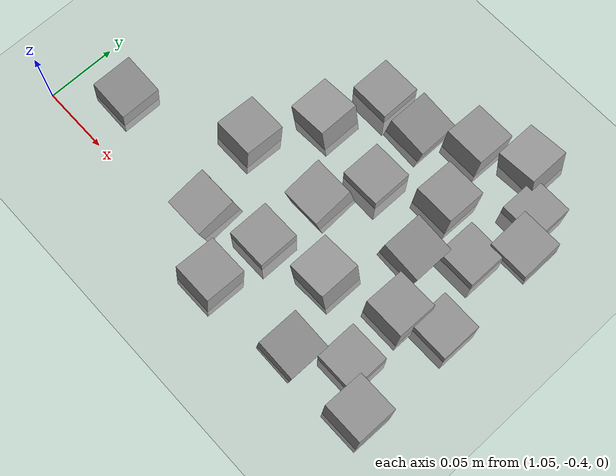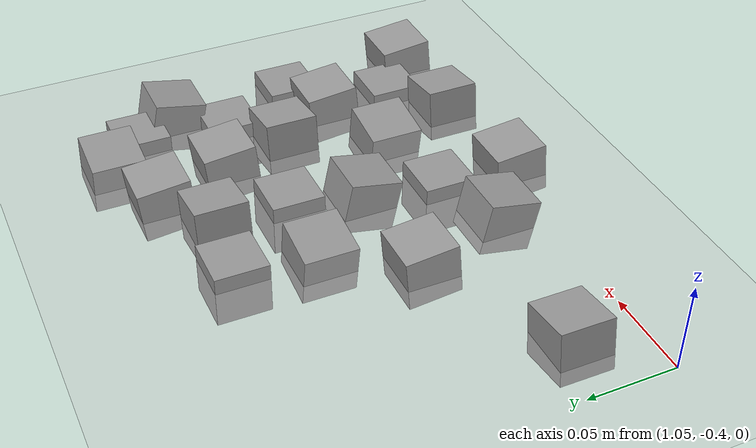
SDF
<sdf version="1.7">
 <world name="default">
  <model name="ground_plane">
   <static>1</static>
   <link name="link">
    <collision name="collision">
     <geometry><plane><normal>0 0 1</normal><size>100 100</size></plane></geometry>
     <surface><friction><ode><mu>100</mu><mu2>50</mu2></ode></friction></surface>
    </collision>
    <visual name="visual">
     <cast_shadows>0</cast_shadows>
     <geometry><plane><normal>0 0 1</normal><size>100 100</size></plane></geometry>
     <material>
      <script><uri>file://media/materials/scripts/gazebo.material</uri><name>Gazebo/Grey</name></script>
     </material>
    </visual>
   </link>
  </model>
  <model name="stone_road_1">
   <link name="link_0">
    <inertial>
     <mass>1</mass>
     <inertia>
      <ixx>0.166667</ixx>
      <ixy>0</ixy>
      <ixz>0</ixz>
      <iyy>0.166667</iyy>
      <iyz>0</iyz>
      <izz>0.166667</izz>
     </inertia>
    </inertial>
    <pose>-0.171827 0.03973 0.003778 0.2 -0 0</pose>
    <kinematic>1</kinematic>
    <visual name="visual">
     <geometry><box><size>0.03 0.03 0.03</size></box></geometry>
     <material>
      <lighting>1</lighting>
      <script><uri>file://media/materials/scripts/gazebo.material</uri><name>Gazebo/Grey</name></script>
      <shader type="pixel"><normal_map>__default__</normal_map></shader>
      <ambient>0.3 0.3 0.3 1</ambient>
      <diffuse>0.7 0.7 0.7 1</diffuse>
      <specular>0.01 0.01 0.01 1</specular>
      <emissive>0 0 0 1</emissive>
     </material>
    </visual>
    <collision name="collision">
     <geometry><box><size>0.03 0.03 0.03</size></box></geometry>
     <surface>
      <friction>
       <ode><mu>1</mu><mu2>1</mu2><fdir1>0 0 0</fdir1><slip1>0</slip1><slip2>0</slip2></ode>
       <torsional>
        <coefficient>1</coefficient>
        <patch_radius>0</patch_radius>
        <surface_radius>0</surface_radius>
        <use_patch_radius>1</use_patch_radius>
        <ode><slip>0</slip></ode>
       </torsional>
      </friction>
      <bounce><restitution_coefficient>0</restitution_coefficient><threshold>1e+06</threshold></bounce>
      <contact>
       <collide_without_contact>0</collide_without_contact>
       <collide_without_contact_bitmask>1</collide_without_contact_bitmask>
       <collide_bitmask>1</collide_bitmask>
       <ode>
        <soft_cfm>0</soft_cfm>
        <soft_erp>0.2</soft_erp>
        <kp>1e+13</kp>
        <kd>1</kd>
        <max_vel>0.01</max_vel>
        <min_depth>0</min_depth>
       </ode>
       <bullet>
        <split_impulse>1</split_impulse>
        <split_impulse_penetration_threshold>-0.01</split_impulse_penetration_threshold>
        <soft_cfm>0</soft_cfm>
        <soft_erp>0.2</soft_erp>
        <kp>1e+13</kp>
        <kd>1</kd>
       </bullet>
      </contact>
     </surface>
    </collision>
   </link>
   <link name="link_0_clone_10">
    <inertial>
     <mass>1</mass>
     <inertia>
      <ixx>0.166667</ixx>
      <ixy>0</ixy>
      <ixz>0</ixz>
      <iyy>0.166667</iyy>
      <iyz>0</iyz>
      <izz>0.166667</izz>
     </inertia>
    </inertial>
    <pose>-0.01295 0.17123 0.003778 0.2 -0 0</pose>
    <kinematic>1</kinematic>
    <visual name="visual">
     <geometry><box><size>0.03 0.03 0.03</size></box></geometry>
     <material>
      <lighting>1</lighting>
      <script><uri>file://media/materials/scripts/gazebo.material</uri><name>Gazebo/Grey</name></script>
      <shader type="pixel"><normal_map>__default__</normal_map></shader>
      <ambient>0.3 0.3 0.3 1</ambient>
      <diffuse>0.7 0.7 0.7 1</diffuse>
      <specular>0.01 0.01 0.01 1</specular>
      <emissive>0 0 0 1</emissive>
     </material>
    </visual>
    <collision name="collision">
     <geometry><box><size>0.03 0.03 0.03</size></box></geometry>
     <surface>
      <friction>
       <ode><mu>1</mu><mu2>1</mu2><fdir1>0 0 0</fdir1><slip1>0</slip1><slip2>0</slip2></ode>
       <torsional>
        <coefficient>1</coefficient>
        <patch_radius>0</patch_radius>
        <surface_radius>0</surface_radius>
        <use_patch_radius>1</use_patch_radius>
        <ode><slip>0</slip></ode>
       </torsional>
      </friction>
      <bounce><restitution_coefficient>0</restitution_coefficient><threshold>1e+06</threshold></bounce>
      <contact>
       <collide_without_contact>0</collide_without_contact>
       <collide_without_contact_bitmask>1</collide_without_contact_bitmask>
       <collide_bitmask>1</collide_bitmask>
       <ode>
        <soft_cfm>0</soft_cfm>
        <soft_erp>0.2</soft_erp>
        <kp>1e+13</kp>
        <kd>1</kd>
        <max_vel>0.01</max_vel>
        <min_depth>0</min_depth>
       </ode>
       <bullet>
        <split_impulse>1</split_impulse>
        <split_impulse_penetration_threshold>-0.01</split_impulse_penetration_threshold>
        <soft_cfm>0</soft_cfm>
        <soft_erp>0.2</soft_erp>
        <kp>1e+13</kp>
        <kd>1</kd>
       </bullet>
      </contact>
     </surface>
    </collision>
   </link>
   <link name="link_0_clone_2">
    <inertial>
     <mass>1</mass>
     <inertia>
      <ixx>0.166667</ixx>
      <ixy>0</ixy>
      <ixz>0</ixz>
      <iyy>0.166667</iyy>
      <iyz>0</iyz>
      <izz>0.166667</izz>
     </inertia>
    </inertial>
    <pose>-0.065685 0.018139 0.003778 0 0.15 0</pose>
    <kinematic>1</kinematic>
    <visual name="visual">
     <geometry><box><size>0.03 0.03 0.03</size></box></geometry>
     <material>
      <lighting>1</lighting>
      <script><uri>file://media/materials/scripts/gazebo.material</uri><name>Gazebo/Grey</name></script>
      <shader type="pixel"><normal_map>__default__</normal_map></shader>
      <ambient>0.3 0.3 0.3 1</ambient>
      <diffuse>0.7 0.7 0.7 1</diffuse>
      <specular>0.01 0.01 0.01 1</specular>
      <emissive>0 0 0 1</emissive>
     </material>
    </visual>
    <collision name="collision">
     <geometry><box><size>0.03 0.03 0.03</size></box></geometry>
     <surface>
      <friction>
       <ode><mu>1</mu><mu2>1</mu2><fdir1>0 0 0</fdir1><slip1>0</slip1><slip2>0</slip2></ode>
       <torsional>
        <coefficient>1</coefficient>
        <patch_radius>0</patch_radius>
        <surface_radius>0</surface_radius>
        <use_patch_radius>1</use_patch_radius>
        <ode><slip>0</slip></ode>
       </torsional>
      </friction>
      <bounce><restitution_coefficient>0</restitution_coefficient><threshold>1e+06</threshold></bounce>
      <contact>
       <collide_without_contact>0</collide_without_contact>
       <collide_without_contact_bitmask>1</collide_without_contact_bitmask>
       <collide_bitmask>1</collide_bitmask>
       <ode>
        <soft_cfm>0</soft_cfm>
        <soft_erp>0.2</soft_erp>
        <kp>1e+13</kp>
        <kd>1</kd>
        <max_vel>0.01</max_vel>
        <min_depth>0</min_depth>
       </ode>
       <bullet>
        <split_impulse>1</split_impulse>
        <split_impulse_penetration_threshold>-0.01</split_impulse_penetration_threshold>
        <soft_cfm>0</soft_cfm>
        <soft_erp>0.2</soft_erp>
        <kp>1e+13</kp>
        <kd>1</kd>
       </bullet>
      </contact>
     </surface>
    </collision>
   </link>
   <link name="link_0_clone_2_clone_2_clone_1">
    <inertial>
     <mass>1</mass>
     <inertia>
      <ixx>0.166667</ixx>
      <ixy>0</ixy>
      <ixz>0</ixz>
      <iyy>0.166667</iyy>
      <iyz>0</iyz>
      <izz>0.166667</izz>
     </inertia>
    </inertial>
    <pose>-0.085624 0.065625 0.003778 0 -0.15 0</pose>
    <kinematic>1</kinematic>
    <visual name="visual">
     <geometry><box><size>0.03 0.03 0.03</size></box></geometry>
     <material>
      <lighting>1</lighting>
      <script><uri>file://media/materials/scripts/gazebo.material</uri><name>Gazebo/Grey</name></script>
      <shader type="pixel"><normal_map>__default__</normal_map></shader>
      <ambient>0.3 0.3 0.3 1</ambient>
      <diffuse>0.7 0.7 0.7 1</diffuse>
      <specular>0.01 0.01 0.01 1</specular>
      <emissive>0 0 0 1</emissive>
     </material>
    </visual>
    <collision name="collision">
     <geometry><box><size>0.03 0.03 0.03</size></box></geometry>
     <surface>
      <friction>
       <ode><mu>1</mu><mu2>1</mu2><fdir1>0 0 0</fdir1><slip1>0</slip1><slip2>0</slip2></ode>
       <torsional>
        <coefficient>1</coefficient>
        <patch_radius>0</patch_radius>
        <surface_radius>0</surface_radius>
        <use_patch_radius>1</use_patch_radius>
        <ode><slip>0</slip></ode>
       </torsional>
      </friction>
      <bounce><restitution_coefficient>0</restitution_coefficient><threshold>1e+06</threshold></bounce>
      <contact>
       <collide_without_contact>0</collide_without_contact>
       <collide_without_contact_bitmask>1</collide_without_contact_bitmask>
       <collide_bitmask>1</collide_bitmask>
       <ode>
        <soft_cfm>0</soft_cfm>
        <soft_erp>0.2</soft_erp>
        <kp>1e+13</kp>
        <kd>1</kd>
        <max_vel>0.01</max_vel>
        <min_depth>0</min_depth>
       </ode>
       <bullet>
        <split_impulse>1</split_impulse>
        <split_impulse_penetration_threshold>-0.01</split_impulse_penetration_threshold>
        <soft_cfm>0</soft_cfm>
        <soft_erp>0.2</soft_erp>
        <kp>1e+13</kp>
        <kd>1</kd>
       </bullet>
      </contact>
     </surface>
    </collision>
   </link>
   <link name="link_0_clone_2_clone_2_clone_11">
    <inertial>
     <mass>1</mass>
     <inertia>
      <ixx>0.166667</ixx>
      <ixy>0</ixy>
      <ixz>0</ixz>
      <iyy>0.166667</iyy>
      <iyz>0</iyz>
      <izz>0.166667</izz>
     </inertia>
    </inertial>
    <pose>-0.050382 0.216558 0.003778 0 -0.15 0</pose>
    <kinematic>1</kinematic>
    <visual name="visual">
     <geometry><box><size>0.03 0.03 0.03</size></box></geometry>
     <material>
      <lighting>1</lighting>
      <script><uri>file://media/materials/scripts/gazebo.material</uri><name>Gazebo/Grey</name></script>
      <shader type="pixel"><normal_map>__default__</normal_map></shader>
      <ambient>0.3 0.3 0.3 1</ambient>
      <diffuse>0.7 0.7 0.7 1</diffuse>
      <specular>0.01 0.01 0.01 1</specular>
      <emissive>0 0 0 1</emissive>
     </material>
    </visual>
    <collision name="collision">
     <geometry><box><size>0.03 0.03 0.03</size></box></geometry>
     <surface>
      <friction>
       <ode><mu>1</mu><mu2>1</mu2><fdir1>0 0 0</fdir1><slip1>0</slip1><slip2>0</slip2></ode>
       <torsional>
        <coefficient>1</coefficient>
        <patch_radius>0</patch_radius>
        <surface_radius>0</surface_radius>
        <use_patch_radius>1</use_patch_radius>
        <ode><slip>0</slip></ode>
       </torsional>
      </friction>
      <bounce><restitution_coefficient>0</restitution_coefficient><threshold>1e+06</threshold></bounce>
      <contact>
       <collide_without_contact>0</collide_without_contact>
       <collide_without_contact_bitmask>1</collide_without_contact_bitmask>
       <collide_bitmask>1</collide_bitmask>
       <ode>
        <soft_cfm>0</soft_cfm>
        <soft_erp>0.2</soft_erp>
        <kp>1e+13</kp>
        <kd>1</kd>
        <max_vel>0.01</max_vel>
        <min_depth>0</min_depth>
       </ode>
       <bullet>
        <split_impulse>1</split_impulse>
        <split_impulse_penetration_threshold>-0.01</split_impulse_penetration_threshold>
        <soft_cfm>0</soft_cfm>
        <soft_erp>0.2</soft_erp>
        <kp>1e+13</kp>
        <kd>1</kd>
       </bullet>
      </contact>
     </surface>
    </collision>
   </link>
   <link name="link_0_clone_2_clone_2_clone_13_clone_clone_13">
    <inertial>
     <mass>1</mass>
     <inertia>
      <ixx>0.166667</ixx>
      <ixy>0</ixy>
      <ixz>0</ixz>
      <iyy>0.166667</iyy>
      <iyz>0</iyz>
      <izz>0.166667</izz>
     </inertia>
    </inertial>
    <pose>-0.069861 0.157394 0.003778 -0.1 0 0</pose>
    <kinematic>1</kinematic>
    <visual name="visual">
     <geometry><box><size>0.03 0.03 0.03</size></box></geometry>
     <material>
      <lighting>1</lighting>
      <script><uri>file://media/materials/scripts/gazebo.material</uri><name>Gazebo/Grey</name></script>
      <shader type="pixel"><normal_map>__default__</normal_map></shader>
      <ambient>0.3 0.3 0.3 1</ambient>
      <diffuse>0.7 0.7 0.7 1</diffuse>
      <specular>0.01 0.01 0.01 1</specular>
      <emissive>0 0 0 1</emissive>
     </material>
    </visual>
    <collision name="collision">
     <geometry><box><size>0.03 0.03 0.03</size></box></geometry>
     <surface>
      <friction>
       <ode><mu>1</mu><mu2>1</mu2><fdir1>0 0 0</fdir1><slip1>0</slip1><slip2>0</slip2></ode>
       <torsional>
        <coefficient>1</coefficient>
        <patch_radius>0</patch_radius>
        <surface_radius>0</surface_radius>
        <use_patch_radius>1</use_patch_radius>
        <ode><slip>0</slip></ode>
       </torsional>
      </friction>
      <bounce><restitution_coefficient>0</restitution_coefficient><threshold>1e+06</threshold></bounce>
      <contact>
       <collide_without_contact>0</collide_without_contact>
       <collide_without_contact_bitmask>1</collide_without_contact_bitmask>
       <collide_bitmask>1</collide_bitmask>
       <ode>
        <soft_cfm>0</soft_cfm>
        <soft_erp>0.2</soft_erp>
        <kp>1e+13</kp>
        <kd>1</kd>
        <max_vel>0.01</max_vel>
        <min_depth>0</min_depth>
       </ode>
       <bullet>
        <split_impulse>1</split_impulse>
        <split_impulse_penetration_threshold>-0.01</split_impulse_penetration_threshold>
        <soft_cfm>0</soft_cfm>
        <soft_erp>0.2</soft_erp>
        <kp>1e+13</kp>
        <kd>1</kd>
       </bullet>
      </contact>
     </surface>
    </collision>
   </link>
   <link name="link_0_clone_2_clone_2_clone_13_clone_clone_14">
    <inertial>
     <mass>1</mass>
     <inertia>
      <ixx>0.166667</ixx>
      <ixy>0</ixy>
      <ixz>0</ixz>
      <iyy>0.166667</iyy>
      <iyz>0</iyz>
      <izz>0.166667</izz>
     </inertia>
    </inertial>
    <pose>-0.190578 0.093923 0.003778 -0.1 0 0</pose>
    <kinematic>1</kinematic>
    <visual name="visual">
     <geometry><box><size>0.03 0.03 0.03</size></box></geometry>
     <material>
      <lighting>1</lighting>
      <script><uri>file://media/materials/scripts/gazebo.material</uri><name>Gazebo/Grey</name></script>
      <shader type="pixel"><normal_map>__default__</normal_map></shader>
      <ambient>0.3 0.3 0.3 1</ambient>
      <diffuse>0.7 0.7 0.7 1</diffuse>
      <specular>0.01 0.01 0.01 1</specular>
      <emissive>0 0 0 1</emissive>
     </material>
    </visual>
    <collision name="collision">
     <geometry><box><size>0.03 0.03 0.03</size></box></geometry>
     <surface>
      <friction>
       <ode><mu>1</mu><mu2>1</mu2><fdir1>0 0 0</fdir1><slip1>0</slip1><slip2>0</slip2></ode>
       <torsional>
        <coefficient>1</coefficient>
        <patch_radius>0</patch_radius>
        <surface_radius>0</surface_radius>
        <use_patch_radius>1</use_patch_radius>
        <ode><slip>0</slip></ode>
       </torsional>
      </friction>
      <bounce><restitution_coefficient>0</restitution_coefficient><threshold>1e+06</threshold></bounce>
      <contact>
       <collide_without_contact>0</collide_without_contact>
       <collide_without_contact_bitmask>1</collide_without_contact_bitmask>
       <collide_bitmask>1</collide_bitmask>
       <ode>
        <soft_cfm>0</soft_cfm>
        <soft_erp>0.2</soft_erp>
        <kp>1e+13</kp>
        <kd>1</kd>
        <max_vel>0.01</max_vel>
        <min_depth>0</min_depth>
       </ode>
       <bullet>
        <split_impulse>1</split_impulse>
        <split_impulse_penetration_threshold>-0.01</split_impulse_penetration_threshold>
        <soft_cfm>0</soft_cfm>
        <soft_erp>0.2</soft_erp>
        <kp>1e+13</kp>
        <kd>1</kd>
       </bullet>
      </contact>
     </surface>
    </collision>
   </link>
   <link name="link_0_clone_2_clone_2_clone_13_clone_clone_15">
    <inertial>
     <mass>1</mass>
     <inertia>
      <ixx>0.166667</ixx>
      <ixy>0</ixy>
      <ixz>0</ixz>
      <iyy>0.166667</iyy>
      <iyz>0</iyz>
      <izz>0.166667</izz>
     </inertia>
    </inertial>
    <pose>-0.084893 0.19984 0.003778 -0.1 0 0</pose>
    <kinematic>1</kinematic>
    <visual name="visual">
     <geometry><box><size>0.03 0.03 0.03</size></box></geometry>
     <material>
      <lighting>1</lighting>
      <script><uri>file://media/materials/scripts/gazebo.material</uri><name>Gazebo/Grey</name></script>
      <shader type="pixel"><normal_map>__default__</normal_map></shader>
      <ambient>0.3 0.3 0.3 1</ambient>
      <diffuse>0.7 0.7 0.7 1</diffuse>
      <specular>0.01 0.01 0.01 1</specular>
      <emissive>0 0 0 1</emissive>
     </material>
    </visual>
    <collision name="collision">
     <geometry><box><size>0.03 0.03 0.03</size></box></geometry>
     <surface>
      <friction>
       <ode><mu>1</mu><mu2>1</mu2><fdir1>0 0 0</fdir1><slip1>0</slip1><slip2>0</slip2></ode>
       <torsional>
        <coefficient>1</coefficient>
        <patch_radius>0</patch_radius>
        <surface_radius>0</surface_radius>
        <use_patch_radius>1</use_patch_radius>
        <ode><slip>0</slip></ode>
       </torsional>
      </friction>
      <bounce><restitution_coefficient>0</restitution_coefficient><threshold>1e+06</threshold></bounce>
      <contact>
       <collide_without_contact>0</collide_without_contact>
       <collide_without_contact_bitmask>1</collide_without_contact_bitmask>
       <collide_bitmask>1</collide_bitmask>
       <ode>
        <soft_cfm>0</soft_cfm>
        <soft_erp>0.2</soft_erp>
        <kp>1e+13</kp>
        <kd>1</kd>
        <max_vel>0.01</max_vel>
        <min_depth>0</min_depth>
       </ode>
       <bullet>
        <split_impulse>1</split_impulse>
        <split_impulse_penetration_threshold>-0.01</split_impulse_penetration_threshold>
        <soft_cfm>0</soft_cfm>
        <soft_erp>0.2</soft_erp>
        <kp>1e+13</kp>
        <kd>1</kd>
       </bullet>
      </contact>
     </surface>
    </collision>
   </link>
   <link name="link_0_clone_2_clone_2_clone_13_clone_clone_16_clone_0">
    <inertial>
     <mass>1</mass>
     <inertia>
      <ixx>0.166667</ixx>
      <ixy>0</ixy>
      <ixz>0</ixz>
      <iyy>0.166667</iyy>
      <iyz>0</iyz>
      <izz>0.166667</izz>
     </inertia>
    </inertial>
    <pose>-0.010782 0.09679 -0.006222 0 -0 0</pose>
    <kinematic>1</kinematic>
    <visual name="visual">
     <geometry><box><size>0.03 0.03 0.03</size></box></geometry>
     <material>
      <lighting>1</lighting>
      <script><uri>file://media/materials/scripts/gazebo.material</uri><name>Gazebo/Grey</name></script>
      <shader type="pixel"><normal_map>__default__</normal_map></shader>
      <ambient>0.3 0.3 0.3 1</ambient>
      <diffuse>0.7 0.7 0.7 1</diffuse>
      <specular>0.01 0.01 0.01 1</specular>
      <emissive>0 0 0 1</emissive>
     </material>
    </visual>
    <collision name="collision">
     <geometry><box><size>0.03 0.03 0.03</size></box></geometry>
     <surface>
      <friction>
       <ode><mu>1</mu><mu2>1</mu2><fdir1>0 0 0</fdir1><slip1>0</slip1><slip2>0</slip2></ode>
       <torsional>
        <coefficient>1</coefficient>
        <patch_radius>0</patch_radius>
        <surface_radius>0</surface_radius>
        <use_patch_radius>1</use_patch_radius>
        <ode><slip>0</slip></ode>
       </torsional>
      </friction>
      <bounce><restitution_coefficient>0</restitution_coefficient><threshold>1e+06</threshold></bounce>
      <contact>
       <collide_without_contact>0</collide_without_contact>
       <collide_without_contact_bitmask>1</collide_without_contact_bitmask>
       <collide_bitmask>1</collide_bitmask>
       <ode>
        <soft_cfm>0</soft_cfm>
        <soft_erp>0.2</soft_erp>
        <kp>1e+13</kp>
        <kd>1</kd>
        <max_vel>0.01</max_vel>
        <min_depth>0</min_depth>
       </ode>
       <bullet>
        <split_impulse>1</split_impulse>
        <split_impulse_penetration_threshold>-0.01</split_impulse_penetration_threshold>
        <soft_cfm>0</soft_cfm>
        <soft_erp>0.2</soft_erp>
        <kp>1e+13</kp>
        <kd>1</kd>
       </bullet>
      </contact>
     </surface>
    </collision>
   </link>
   <link name="link_0_clone_2_clone_2_clone_13_clone_clone_16_clone_2">
    <inertial>
     <mass>1</mass>
     <inertia>
      <ixx>0.166667</ixx>
      <ixy>0</ixy>
      <ixz>0</ixz>
      <iyy>0.166667</iyy>
      <iyz>0</iyz>
      <izz>0.166667</izz>
     </inertia>
    </inertial>
    <pose>-0.035128 0.040728 -0.006222 0 -0 0</pose>
    <kinematic>1</kinematic>
    <visual name="visual">
     <geometry><box><size>0.03 0.03 0.03</size></box></geometry>
     <material>
      <lighting>1</lighting>
      <script><uri>file://media/materials/scripts/gazebo.material</uri><name>Gazebo/Grey</name></script>
      <shader type="pixel"><normal_map>__default__</normal_map></shader>
      <ambient>0.3 0.3 0.3 1</ambient>
      <diffuse>0.7 0.7 0.7 1</diffuse>
      <specular>0.01 0.01 0.01 1</specular>
      <emissive>0 0 0 1</emissive>
     </material>
    </visual>
    <collision name="collision">
     <geometry><box><size>0.03 0.03 0.03</size></box></geometry>
     <surface>
      <friction>
       <ode><mu>1</mu><mu2>1</mu2><fdir1>0 0 0</fdir1><slip1>0</slip1><slip2>0</slip2></ode>
       <torsional>
        <coefficient>1</coefficient>
        <patch_radius>0</patch_radius>
        <surface_radius>0</surface_radius>
        <use_patch_radius>1</use_patch_radius>
        <ode><slip>0</slip></ode>
       </torsional>
      </friction>
      <bounce><restitution_coefficient>0</restitution_coefficient><threshold>1e+06</threshold></bounce>
      <contact>
       <collide_without_contact>0</collide_without_contact>
       <collide_without_contact_bitmask>1</collide_without_contact_bitmask>
       <collide_bitmask>1</collide_bitmask>
       <ode>
        <soft_cfm>0</soft_cfm>
        <soft_erp>0.2</soft_erp>
        <kp>1e+13</kp>
        <kd>1</kd>
        <max_vel>0.01</max_vel>
        <min_depth>0</min_depth>
       </ode>
       <bullet>
        <split_impulse>1</split_impulse>
        <split_impulse_penetration_threshold>-0.01</split_impulse_penetration_threshold>
        <soft_cfm>0</soft_cfm>
        <soft_erp>0.2</soft_erp>
        <kp>1e+13</kp>
        <kd>1</kd>
       </bullet>
      </contact>
     </surface>
    </collision>
   </link>
   <link name="link_0_clone_2_clone_2_clone_13_clone_clone_16_clone_21">
    <inertial>
     <mass>1</mass>
     <inertia>
      <ixx>0.166667</ixx>
      <ixy>0</ixy>
      <ixz>0</ixz>
      <iyy>0.166667</iyy>
      <iyz>0</iyz>
      <izz>0.166667</izz>
     </inertia>
    </inertial>
    <pose>-0.032398 0.142589 -0.006222 0 -0 0</pose>
    <kinematic>1</kinematic>
    <visual name="visual">
     <geometry><box><size>0.03 0.03 0.03</size></box></geometry>
     <material>
      <lighting>1</lighting>
      <script><uri>file://media/materials/scripts/gazebo.material</uri><name>Gazebo/Grey</name></script>
      <shader type="pixel"><normal_map>__default__</normal_map></shader>
      <ambient>0.3 0.3 0.3 1</ambient>
      <diffuse>0.7 0.7 0.7 1</diffuse>
      <specular>0.01 0.01 0.01 1</specular>
      <emissive>0 0 0 1</emissive>
     </material>
    </visual>
    <collision name="collision">
     <geometry><box><size>0.03 0.03 0.03</size></box></geometry>
     <surface>
      <friction>
       <ode><mu>1</mu><mu2>1</mu2><fdir1>0 0 0</fdir1><slip1>0</slip1><slip2>0</slip2></ode>
       <torsional>
        <coefficient>1</coefficient>
        <patch_radius>0</patch_radius>
        <surface_radius>0</surface_radius>
        <use_patch_radius>1</use_patch_radius>
        <ode><slip>0</slip></ode>
       </torsional>
      </friction>
      <bounce><restitution_coefficient>0</restitution_coefficient><threshold>1e+06</threshold></bounce>
      <contact>
       <collide_without_contact>0</collide_without_contact>
       <collide_without_contact_bitmask>1</collide_without_contact_bitmask>
       <collide_bitmask>1</collide_bitmask>
       <ode>
        <soft_cfm>0</soft_cfm>
        <soft_erp>0.2</soft_erp>
        <kp>1e+13</kp>
        <kd>1</kd>
        <max_vel>0.01</max_vel>
        <min_depth>0</min_depth>
       </ode>
       <bullet>
        <split_impulse>1</split_impulse>
        <split_impulse_penetration_threshold>-0.01</split_impulse_penetration_threshold>
        <soft_cfm>0</soft_cfm>
        <soft_erp>0.2</soft_erp>
        <kp>1e+13</kp>
        <kd>1</kd>
       </bullet>
      </contact>
     </surface>
    </collision>
   </link>
   <link name="link_0_clone_2_clone_2_clone_13_clone_clone_16_clone_22">
    <inertial>
     <mass>1</mass>
     <inertia>
      <ixx>0.166667</ixx>
      <ixy>0</ixy>
      <ixz>0</ixz>
      <iyy>0.166667</iyy>
      <iyz>0</iyz>
      <izz>0.166667</izz>
     </inertia>
    </inertial>
    <pose>-0.025872 0.194724 -0.006222 0 -0 0</pose>
    <kinematic>1</kinematic>
    <visual name="visual">
     <geometry><box><size>0.03 0.03 0.03</size></box></geometry>
     <material>
      <lighting>1</lighting>
      <script><uri>file://media/materials/scripts/gazebo.material</uri><name>Gazebo/Grey</name></script>
      <shader type="pixel"><normal_map>__default__</normal_map></shader>
      <ambient>0.3 0.3 0.3 1</ambient>
      <diffuse>0.7 0.7 0.7 1</diffuse>
      <specular>0.01 0.01 0.01 1</specular>
      <emissive>0 0 0 1</emissive>
     </material>
    </visual>
    <collision name="collision">
     <geometry><box><size>0.03 0.03 0.03</size></box></geometry>
     <surface>
      <friction>
       <ode><mu>1</mu><mu2>1</mu2><fdir1>0 0 0</fdir1><slip1>0</slip1><slip2>0</slip2></ode>
       <torsional>
        <coefficient>1</coefficient>
        <patch_radius>0</patch_radius>
        <surface_radius>0</surface_radius>
        <use_patch_radius>1</use_patch_radius>
        <ode><slip>0</slip></ode>
       </torsional>
      </friction>
      <bounce><restitution_coefficient>0</restitution_coefficient><threshold>1e+06</threshold></bounce>
      <contact>
       <collide_without_contact>0</collide_without_contact>
       <collide_without_contact_bitmask>1</collide_without_contact_bitmask>
       <collide_bitmask>1</collide_bitmask>
       <ode>
        <soft_cfm>0</soft_cfm>
        <soft_erp>0.2</soft_erp>
        <kp>1e+13</kp>
        <kd>1</kd>
        <max_vel>0.01</max_vel>
        <min_depth>0</min_depth>
       </ode>
       <bullet>
        <split_impulse>1</split_impulse>
        <split_impulse_penetration_threshold>-0.01</split_impulse_penetration_threshold>
        <soft_cfm>0</soft_cfm>
        <soft_erp>0.2</soft_erp>
        <kp>1e+13</kp>
        <kd>1</kd>
       </bullet>
      </contact>
     </surface>
    </collision>
   </link>
   <link name="link_0_clone_2_clone_2_clone_13_clone_clone_16_clone_25">
    <inertial>
     <mass>1</mass>
     <inertia>
      <ixx>0.166667</ixx>
      <ixy>0</ixy>
      <ixz>0</ixz>
      <iyy>0.166667</iyy>
      <iyz>0</iyz>
      <izz>0.166667</izz>
     </inertia>
    </inertial>
    <pose>-0.15326 0.182661 -0.006222 0 -0 0</pose>
    <kinematic>1</kinematic>
    <visual name="visual">
     <geometry><box><size>0.03 0.03 0.03</size></box></geometry>
     <material>
      <lighting>1</lighting>
      <script><uri>file://media/materials/scripts/gazebo.material</uri><name>Gazebo/Grey</name></script>
      <shader type="pixel"><normal_map>__default__</normal_map></shader>
      <ambient>0.3 0.3 0.3 1</ambient>
      <diffuse>0.7 0.7 0.7 1</diffuse>
      <specular>0.01 0.01 0.01 1</specular>
      <emissive>0 0 0 1</emissive>
     </material>
    </visual>
    <collision name="collision">
     <geometry><box><size>0.03 0.03 0.03</size></box></geometry>
     <surface>
      <friction>
       <ode><mu>1</mu><mu2>1</mu2><fdir1>0 0 0</fdir1><slip1>0</slip1><slip2>0</slip2></ode>
       <torsional>
        <coefficient>1</coefficient>
        <patch_radius>0</patch_radius>
        <surface_radius>0</surface_radius>
        <use_patch_radius>1</use_patch_radius>
        <ode><slip>0</slip></ode>
       </torsional>
      </friction>
      <bounce><restitution_coefficient>0</restitution_coefficient><threshold>1e+06</threshold></bounce>
      <contact>
       <collide_without_contact>0</collide_without_contact>
       <collide_without_contact_bitmask>1</collide_without_contact_bitmask>
       <collide_bitmask>1</collide_bitmask>
       <ode>
        <soft_cfm>0</soft_cfm>
        <soft_erp>0.2</soft_erp>
        <kp>1e+13</kp>
        <kd>1</kd>
        <max_vel>0.01</max_vel>
        <min_depth>0</min_depth>
       </ode>
       <bullet>
        <split_impulse>1</split_impulse>
        <split_impulse_penetration_threshold>-0.01</split_impulse_penetration_threshold>
        <soft_cfm>0</soft_cfm>
        <soft_erp>0.2</soft_erp>
        <kp>1e+13</kp>
        <kd>1</kd>
       </bullet>
      </contact>
     </surface>
    </collision>
   </link>
   <link name="link_0_clone_2_clone_2_clone_13_clone_clone_16_clone_3">
    <inertial>
     <mass>1</mass>
     <inertia>
      <ixx>0.166667</ixx>
      <ixy>0</ixy>
      <ixz>0</ixz>
      <iyy>0.166667</iyy>
      <iyz>0</iyz>
      <izz>0.166667</izz>
     </inertia>
    </inertial>
    <pose>-0.112739 0.135576 -0.006222 0 -0 0</pose>
    <kinematic>1</kinematic>
    <visual name="visual">
     <geometry><box><size>0.03 0.03 0.03</size></box></geometry>
     <material>
      <lighting>1</lighting>
      <script><uri>file://media/materials/scripts/gazebo.material</uri><name>Gazebo/Grey</name></script>
      <shader type="pixel"><normal_map>__default__</normal_map></shader>
      <ambient>0.3 0.3 0.3 1</ambient>
      <diffuse>0.7 0.7 0.7 1</diffuse>
      <specular>0.01 0.01 0.01 1</specular>
      <emissive>0 0 0 1</emissive>
     </material>
    </visual>
    <collision name="collision">
     <geometry><box><size>0.03 0.03 0.03</size></box></geometry>
     <surface>
      <friction>
       <ode><mu>1</mu><mu2>1</mu2><fdir1>0 0 0</fdir1><slip1>0</slip1><slip2>0</slip2></ode>
       <torsional>
        <coefficient>1</coefficient>
        <patch_radius>0</patch_radius>
        <surface_radius>0</surface_radius>
        <use_patch_radius>1</use_patch_radius>
        <ode><slip>0</slip></ode>
       </torsional>
      </friction>
      <bounce><restitution_coefficient>0</restitution_coefficient><threshold>1e+06</threshold></bounce>
      <contact>
       <collide_without_contact>0</collide_without_contact>
       <collide_without_contact_bitmask>1</collide_without_contact_bitmask>
       <collide_bitmask>1</collide_bitmask>
       <ode>
        <soft_cfm>0</soft_cfm>
        <soft_erp>0.2</soft_erp>
        <kp>1e+13</kp>
        <kd>1</kd>
        <max_vel>0.01</max_vel>
        <min_depth>0</min_depth>
       </ode>
       <bullet>
        <split_impulse>1</split_impulse>
        <split_impulse_penetration_threshold>-0.01</split_impulse_penetration_threshold>
        <soft_cfm>0</soft_cfm>
        <soft_erp>0.2</soft_erp>
        <kp>1e+13</kp>
        <kd>1</kd>
       </bullet>
      </contact>
     </surface>
    </collision>
   </link>
   <link name="link_0_clone_2_clone_2_clone_13_clone_clone_16_clone_4">
    <inertial>
     <mass>1</mass>
     <inertia>
      <ixx>0.166667</ixx>
      <ixy>0</ixy>
      <ixz>0</ixz>
      <iyy>0.166667</iyy>
      <iyz>0</iyz>
      <izz>0.166667</izz>
     </inertia>
    </inertial>
    <pose>-0.131411 0.053677 -0.006222 0 -0 0</pose>
    <kinematic>1</kinematic>
    <visual name="visual">
     <geometry><box><size>0.03 0.03 0.03</size></box></geometry>
     <material>
      <lighting>1</lighting>
      <script><uri>file://media/materials/scripts/gazebo.material</uri><name>Gazebo/Grey</name></script>
      <shader type="pixel"><normal_map>__default__</normal_map></shader>
      <ambient>0.3 0.3 0.3 1</ambient>
      <diffuse>0.7 0.7 0.7 1</diffuse>
      <specular>0.01 0.01 0.01 1</specular>
      <emissive>0 0 0 1</emissive>
     </material>
    </visual>
    <collision name="collision">
     <geometry><box><size>0.03 0.03 0.03</size></box></geometry>
     <surface>
      <friction>
       <ode><mu>1</mu><mu2>1</mu2><fdir1>0 0 0</fdir1><slip1>0</slip1><slip2>0</slip2></ode>
       <torsional>
        <coefficient>1</coefficient>
        <patch_radius>0</patch_radius>
        <surface_radius>0</surface_radius>
        <use_patch_radius>1</use_patch_radius>
        <ode><slip>0</slip></ode>
       </torsional>
      </friction>
      <bounce><restitution_coefficient>0</restitution_coefficient><threshold>1e+06</threshold></bounce>
      <contact>
       <collide_without_contact>0</collide_without_contact>
       <collide_without_contact_bitmask>1</collide_without_contact_bitmask>
       <collide_bitmask>1</collide_bitmask>
       <ode>
        <soft_cfm>0</soft_cfm>
        <soft_erp>0.2</soft_erp>
        <kp>1e+13</kp>
        <kd>1</kd>
        <max_vel>0.01</max_vel>
        <min_depth>0</min_depth>
       </ode>
       <bullet>
        <split_impulse>1</split_impulse>
        <split_impulse_penetration_threshold>-0.01</split_impulse_penetration_threshold>
        <soft_cfm>0</soft_cfm>
        <soft_erp>0.2</soft_erp>
        <kp>1e+13</kp>
        <kd>1</kd>
       </bullet>
      </contact>
     </surface>
    </collision>
   </link>
   <link name="link_0_clone_2_clone_2_clone_13_clone_clone_2">
    <inertial>
     <mass>1</mass>
     <inertia>
      <ixx>0.166667</ixx>
      <ixy>0</ixy>
      <ixz>0</ixz>
      <iyy>0.166667</iyy>
      <iyz>0</iyz>
      <izz>0.166667</izz>
     </inertia>
    </inertial>
    <pose>-0.037997 0.082571 0.003778 -0.1 0 0</pose>
    <kinematic>1</kinematic>
    <visual name="visual">
     <geometry><box><size>0.03 0.03 0.03</size></box></geometry>
     <material>
      <lighting>1</lighting>
      <script><uri>file://media/materials/scripts/gazebo.material</uri><name>Gazebo/Grey</name></script>
      <shader type="pixel"><normal_map>__default__</normal_map></shader>
      <ambient>0.3 0.3 0.3 1</ambient>
      <diffuse>0.7 0.7 0.7 1</diffuse>
      <specular>0.01 0.01 0.01 1</specular>
      <emissive>0 0 0 1</emissive>
     </material>
    </visual>
    <collision name="collision">
     <geometry><box><size>0.03 0.03 0.03</size></box></geometry>
     <surface>
      <friction>
       <ode><mu>1</mu><mu2>1</mu2><fdir1>0 0 0</fdir1><slip1>0</slip1><slip2>0</slip2></ode>
       <torsional>
        <coefficient>1</coefficient>
        <patch_radius>0</patch_radius>
        <surface_radius>0</surface_radius>
        <use_patch_radius>1</use_patch_radius>
        <ode><slip>0</slip></ode>
       </torsional>
      </friction>
      <bounce><restitution_coefficient>0</restitution_coefficient><threshold>1e+06</threshold></bounce>
      <contact>
       <collide_without_contact>0</collide_without_contact>
       <collide_without_contact_bitmask>1</collide_without_contact_bitmask>
       <collide_bitmask>1</collide_bitmask>
       <ode>
        <soft_cfm>0</soft_cfm>
        <soft_erp>0.2</soft_erp>
        <kp>1e+13</kp>
        <kd>1</kd>
        <max_vel>0.01</max_vel>
        <min_depth>0</min_depth>
       </ode>
       <bullet>
        <split_impulse>1</split_impulse>
        <split_impulse_penetration_threshold>-0.01</split_impulse_penetration_threshold>
        <soft_cfm>0</soft_cfm>
        <soft_erp>0.2</soft_erp>
        <kp>1e+13</kp>
        <kd>1</kd>
       </bullet>
      </contact>
     </surface>
    </collision>
   </link>
   <link name="link_0_clone_2_clone_2_clone_13_clone_clone_3">
    <inertial>
     <mass>1</mass>
     <inertia>
      <ixx>0.166667</ixx>
      <ixy>0</ixy>
      <ixz>0</ixz>
      <iyy>0.166667</iyy>
      <iyz>0</iyz>
      <izz>0.166667</izz>
     </inertia>
    </inertial>
    <pose>-0.008408 0.020239 0.003778 -0.1 0 0</pose>
    <kinematic>1</kinematic>
    <visual name="visual">
     <geometry><box><size>0.03 0.03 0.03</size></box></geometry>
     <material>
      <lighting>1</lighting>
      <script><uri>file://media/materials/scripts/gazebo.material</uri><name>Gazebo/Grey</name></script>
      <shader type="pixel"><normal_map>__default__</normal_map></shader>
      <ambient>0.3 0.3 0.3 1</ambient>
      <diffuse>0.7 0.7 0.7 1</diffuse>
      <specular>0.01 0.01 0.01 1</specular>
      <emissive>0 0 0 1</emissive>
     </material>
    </visual>
    <collision name="collision">
     <geometry><box><size>0.03 0.03 0.03</size></box></geometry>
     <surface>
      <friction>
       <ode><mu>1</mu><mu2>1</mu2><fdir1>0 0 0</fdir1><slip1>0</slip1><slip2>0</slip2></ode>
       <torsional>
        <coefficient>1</coefficient>
        <patch_radius>0</patch_radius>
        <surface_radius>0</surface_radius>
        <use_patch_radius>1</use_patch_radius>
        <ode><slip>0</slip></ode>
       </torsional>
      </friction>
      <bounce><restitution_coefficient>0</restitution_coefficient><threshold>1e+06</threshold></bounce>
      <contact>
       <collide_without_contact>0</collide_without_contact>
       <collide_without_contact_bitmask>1</collide_without_contact_bitmask>
       <collide_bitmask>1</collide_bitmask>
       <ode>
        <soft_cfm>0</soft_cfm>
        <soft_erp>0.2</soft_erp>
        <kp>1e+13</kp>
        <kd>1</kd>
        <max_vel>0.01</max_vel>
        <min_depth>0</min_depth>
       </ode>
       <bullet>
        <split_impulse>1</split_impulse>
        <split_impulse_penetration_threshold>-0.01</split_impulse_penetration_threshold>
        <soft_cfm>0</soft_cfm>
        <soft_erp>0.2</soft_erp>
        <kp>1e+13</kp>
        <kd>1</kd>
       </bullet>
      </contact>
     </surface>
    </collision>
   </link>
   <link name="link_0_clone_2_clone_2_clone_13_clone_clone_7">
    <inertial>
     <mass>1</mass>
     <inertia>
      <ixx>0.166667</ixx>
      <ixy>0</ixy>
      <ixz>0</ixz>
      <iyy>0.166667</iyy>
      <iyz>0</iyz>
      <izz>0.166667</izz>
     </inertia>
    </inertial>
    <pose>-0.133876 0.010561 0.003778 -0.1 0 0</pose>
    <kinematic>1</kinematic>
    <visual name="visual">
     <geometry><box><size>0.03 0.03 0.03</size></box></geometry>
     <material>
      <lighting>1</lighting>
      <script><uri>file://media/materials/scripts/gazebo.material</uri><name>Gazebo/Grey</name></script>
      <shader type="pixel"><normal_map>__default__</normal_map></shader>
      <ambient>0.3 0.3 0.3 1</ambient>
      <diffuse>0.7 0.7 0.7 1</diffuse>
      <specular>0.01 0.01 0.01 1</specular>
      <emissive>0 0 0 1</emissive>
     </material>
    </visual>
    <collision name="collision">
     <geometry><box><size>0.03 0.03 0.03</size></box></geometry>
     <surface>
      <friction>
       <ode><mu>1</mu><mu2>1</mu2><fdir1>0 0 0</fdir1><slip1>0</slip1><slip2>0</slip2></ode>
       <torsional>
        <coefficient>1</coefficient>
        <patch_radius>0</patch_radius>
        <surface_radius>0</surface_radius>
        <use_patch_radius>1</use_patch_radius>
        <ode><slip>0</slip></ode>
       </torsional>
      </friction>
      <bounce><restitution_coefficient>0</restitution_coefficient><threshold>1e+06</threshold></bounce>
      <contact>
       <collide_without_contact>0</collide_without_contact>
       <collide_without_contact_bitmask>1</collide_without_contact_bitmask>
       <collide_bitmask>1</collide_bitmask>
       <ode>
        <soft_cfm>0</soft_cfm>
        <soft_erp>0.2</soft_erp>
        <kp>1e+13</kp>
        <kd>1</kd>
        <max_vel>0.01</max_vel>
        <min_depth>0</min_depth>
       </ode>
       <bullet>
        <split_impulse>1</split_impulse>
        <split_impulse_penetration_threshold>-0.01</split_impulse_penetration_threshold>
        <soft_cfm>0</soft_cfm>
        <soft_erp>0.2</soft_erp>
        <kp>1e+13</kp>
        <kd>1</kd>
       </bullet>
      </contact>
     </surface>
    </collision>
   </link>
   <link name="link_0_clone_2_clone_2_clone_2">
    <inertial>
     <mass>1</mass>
     <inertia>
      <ixx>0.166667</ixx>
      <ixy>0</ixy>
      <ixz>0</ixz>
      <iyy>0.166667</iyy>
      <iyz>0</iyz>
      <izz>0.166667</izz>
     </inertia>
    </inertial>
    <pose>-0.166079 0.139989 0.003778 0 -0.15 0</pose>
    <kinematic>1</kinematic>
    <visual name="visual">
     <geometry><box><size>0.03 0.03 0.03</size></box></geometry>
     <material>
      <lighting>1</lighting>
      <script><uri>file://media/materials/scripts/gazebo.material</uri><name>Gazebo/Grey</name></script>
      <shader type="pixel"><normal_map>__default__</normal_map></shader>
      <ambient>0.3 0.3 0.3 1</ambient>
      <diffuse>0.7 0.7 0.7 1</diffuse>
      <specular>0.01 0.01 0.01 1</specular>
      <emissive>0 0 0 1</emissive>
     </material>
    </visual>
    <collision name="collision">
     <geometry><box><size>0.03 0.03 0.03</size></box></geometry>
     <surface>
      <friction>
       <ode><mu>1</mu><mu2>1</mu2><fdir1>0 0 0</fdir1><slip1>0</slip1><slip2>0</slip2></ode>
       <torsional>
        <coefficient>1</coefficient>
        <patch_radius>0</patch_radius>
        <surface_radius>0</surface_radius>
        <use_patch_radius>1</use_patch_radius>
        <ode><slip>0</slip></ode>
       </torsional>
      </friction>
      <bounce><restitution_coefficient>0</restitution_coefficient><threshold>1e+06</threshold></bounce>
      <contact>
       <collide_without_contact>0</collide_without_contact>
       <collide_without_contact_bitmask>1</collide_without_contact_bitmask>
       <collide_bitmask>1</collide_bitmask>
       <ode>
        <soft_cfm>0</soft_cfm>
        <soft_erp>0.2</soft_erp>
        <kp>1e+13</kp>
        <kd>1</kd>
        <max_vel>0.01</max_vel>
        <min_depth>0</min_depth>
       </ode>
       <bullet>
        <split_impulse>1</split_impulse>
        <split_impulse_penetration_threshold>-0.01</split_impulse_penetration_threshold>
        <soft_cfm>0</soft_cfm>
        <soft_erp>0.2</soft_erp>
        <kp>1e+13</kp>
        <kd>1</kd>
       </bullet>
      </contact>
     </surface>
    </collision>
   </link>
   <link name="link_0_clone_2_clone_3">
    <inertial>
     <mass>1</mass>
     <inertia>
      <ixx>0.166667</ixx>
      <ixy>0</ixy>
      <ixz>0</ixz>
      <iyy>0.166667</iyy>
      <iyz>0</iyz>
      <izz>0.166667</izz>
     </inertia>
    </inertial>
    <pose>-0.058921 0.117271 0.003778 0 0.15 0</pose>
    <kinematic>1</kinematic>
    <visual name="visual">
     <geometry><box><size>0.03 0.03 0.03</size></box></geometry>
     <material>
      <lighting>1</lighting>
      <script><uri>file://media/materials/scripts/gazebo.material</uri><name>Gazebo/Grey</name></script>
      <shader type="pixel"><normal_map>__default__</normal_map></shader>
      <ambient>0.3 0.3 0.3 1</ambient>
      <diffuse>0.7 0.7 0.7 1</diffuse>
      <specular>0.01 0.01 0.01 1</specular>
      <emissive>0 0 0 1</emissive>
     </material>
    </visual>
    <collision name="collision">
     <geometry><box><size>0.03 0.03 0.03</size></box></geometry>
     <surface>
      <friction>
       <ode><mu>1</mu><mu2>1</mu2><fdir1>0 0 0</fdir1><slip1>0</slip1><slip2>0</slip2></ode>
       <torsional>
        <coefficient>1</coefficient>
        <patch_radius>0</patch_radius>
        <surface_radius>0</surface_radius>
        <use_patch_radius>1</use_patch_radius>
        <ode><slip>0</slip></ode>
       </torsional>
      </friction>
      <bounce><restitution_coefficient>0</restitution_coefficient><threshold>1e+06</threshold></bounce>
      <contact>
       <collide_without_contact>0</collide_without_contact>
       <collide_without_contact_bitmask>1</collide_without_contact_bitmask>
       <collide_bitmask>1</collide_bitmask>
       <ode>
        <soft_cfm>0</soft_cfm>
        <soft_erp>0.2</soft_erp>
        <kp>1e+13</kp>
        <kd>1</kd>
        <max_vel>0.01</max_vel>
        <min_depth>0</min_depth>
       </ode>
       <bullet>
        <split_impulse>1</split_impulse>
        <split_impulse_penetration_threshold>-0.01</split_impulse_penetration_threshold>
        <soft_cfm>0</soft_cfm>
        <soft_erp>0.2</soft_erp>
        <kp>1e+13</kp>
        <kd>1</kd>
       </bullet>
      </contact>
     </surface>
    </collision>
   </link>
   <link name="link_0_clone_2_clone_4">
    <inertial>
     <mass>1</mass>
     <inertia>
      <ixx>0.166667</ixx>
      <ixy>0</ixy>
      <ixz>0</ixz>
      <iyy>0.166667</iyy>
      <iyz>0</iyz>
      <izz>0.166667</izz>
     </inertia>
    </inertial>
    <pose>-0.117313 0.179399 0.003778 0 0.15 0</pose>
    <kinematic>1</kinematic>
    <visual name="visual">
     <geometry><box><size>0.03 0.03 0.03</size></box></geometry>
     <material>
      <lighting>1</lighting>
      <script><uri>file://media/materials/scripts/gazebo.material</uri><name>Gazebo/Grey</name></script>
      <shader type="pixel"><normal_map>__default__</normal_map></shader>
      <ambient>0.3 0.3 0.3 1</ambient>
      <diffuse>0.7 0.7 0.7 1</diffuse>
      <specular>0.01 0.01 0.01 1</specular>
      <emissive>0 0 0 1</emissive>
     </material>
    </visual>
    <collision name="collision">
     <geometry><box><size>0.03 0.03 0.03</size></box></geometry>
     <surface>
      <friction>
       <ode><mu>1</mu><mu2>1</mu2><fdir1>0 0 0</fdir1><slip1>0</slip1><slip2>0</slip2></ode>
       <torsional>
        <coefficient>1</coefficient>
        <patch_radius>0</patch_radius>
        <surface_radius>0</surface_radius>
        <use_patch_radius>1</use_patch_radius>
        <ode><slip>0</slip></ode>
       </torsional>
      </friction>
      <bounce><restitution_coefficient>0</restitution_coefficient><threshold>1e+06</threshold></bounce>
      <contact>
       <collide_without_contact>0</collide_without_contact>
       <collide_without_contact_bitmask>1</collide_without_contact_bitmask>
       <collide_bitmask>1</collide_bitmask>
       <ode>
        <soft_cfm>0</soft_cfm>
        <soft_erp>0.2</soft_erp>
        <kp>1e+13</kp>
        <kd>1</kd>
        <max_vel>0.01</max_vel>
        <min_depth>0</min_depth>
       </ode>
       <bullet>
        <split_impulse>1</split_impulse>
        <split_impulse_penetration_threshold>-0.01</split_impulse_penetration_threshold>
        <soft_cfm>0</soft_cfm>
        <soft_erp>0.2</soft_erp>
        <kp>1e+13</kp>
        <kd>1</kd>
       </bullet>
      </contact>
     </surface>
    </collision>
   </link>
   <link name="link_0_clone_2_clone_5">
    <inertial>
     <mass>1</mass>
     <inertia>
      <ixx>0.166667</ixx>
      <ixy>0</ixy>
      <ixz>0</ixz>
      <iyy>0.166667</iyy>
      <iyz>0</iyz>
      <izz>0.166667</izz>
     </inertia>
    </inertial>
    <pose>-0.268485 0.053169 0.003778 0 0.15 0</pose>
    <kinematic>1</kinematic>
    <visual name="visual">
     <geometry><box><size>0.03 0.03 0.03</size></box></geometry>
     <material>
      <lighting>1</lighting>
      <script><uri>file://media/materials/scripts/gazebo.material</uri><name>Gazebo/Grey</name></script>
      <shader type="pixel"><normal_map>__default__</normal_map></shader>
      <ambient>0.3 0.3 0.3 1</ambient>
      <diffuse>0.7 0.7 0.7 1</diffuse>
      <specular>0.01 0.01 0.01 1</specular>
      <emissive>0 0 0 1</emissive>
     </material>
    </visual>
    <collision name="collision">
     <geometry><box><size>0.03 0.03 0.03</size></box></geometry>
     <surface>
      <friction>
       <ode><mu>1</mu><mu2>1</mu2><fdir1>0 0 0</fdir1><slip1>0</slip1><slip2>0</slip2></ode>
       <torsional>
        <coefficient>1</coefficient>
        <patch_radius>0</patch_radius>
        <surface_radius>0</surface_radius>
        <use_patch_radius>1</use_patch_radius>
        <ode><slip>0</slip></ode>
       </torsional>
      </friction>
      <bounce><restitution_coefficient>0</restitution_coefficient><threshold>1e+06</threshold></bounce>
      <contact>
       <collide_without_contact>0</collide_without_contact>
       <collide_without_contact_bitmask>1</collide_without_contact_bitmask>
       <collide_bitmask>1</collide_bitmask>
       <ode>
        <soft_cfm>0</soft_cfm>
        <soft_erp>0.2</soft_erp>
        <kp>1e+13</kp>
        <kd>1</kd>
        <max_vel>0.01</max_vel>
        <min_depth>0</min_depth>
       </ode>
       <bullet>
        <split_impulse>1</split_impulse>
        <split_impulse_penetration_threshold>-0.01</split_impulse_penetration_threshold>
        <soft_cfm>0</soft_cfm>
        <soft_erp>0.2</soft_erp>
        <kp>1e+13</kp>
        <kd>1</kd>
       </bullet>
      </contact>
     </surface>
    </collision>
   </link>
   <link name="link_0_clone_3">
    <inertial>
     <mass>1</mass>
     <inertia>
      <ixx>0.166667</ixx>
      <ixy>0</ixy>
      <ixz>0</ixz>
      <iyy>0.166667</iyy>
      <iyz>0</iyz>
      <izz>0.166667</izz>
     </inertia>
    </inertial>
    <pose>-0.126666 0.098861 0.003778 0.2 -0 0</pose>
    <kinematic>1</kinematic>
    <visual name="visual">
     <geometry><box><size>0.03 0.03 0.03</size></box></geometry>
     <material>
      <lighting>1</lighting>
      <script><uri>file://media/materials/scripts/gazebo.material</uri><name>Gazebo/Grey</name></script>
      <shader type="pixel"><normal_map>__default__</normal_map></shader>
      <ambient>0.3 0.3 0.3 1</ambient>
      <diffuse>0.7 0.7 0.7 1</diffuse>
      <specular>0.01 0.01 0.01 1</specular>
      <emissive>0 0 0 1</emissive>
     </material>
    </visual>
    <collision name="collision">
     <geometry><box><size>0.03 0.03 0.03</size></box></geometry>
     <surface>
      <friction>
       <ode><mu>1</mu><mu2>1</mu2><fdir1>0 0 0</fdir1><slip1>0</slip1><slip2>0</slip2></ode>
       <torsional>
        <coefficient>1</coefficient>
        <patch_radius>0</patch_radius>
        <surface_radius>0</surface_radius>
        <use_patch_radius>1</use_patch_radius>
        <ode><slip>0</slip></ode>
       </torsional>
      </friction>
      <bounce><restitution_coefficient>0</restitution_coefficient><threshold>1e+06</threshold></bounce>
      <contact>
       <collide_without_contact>0</collide_without_contact>
       <collide_without_contact_bitmask>1</collide_without_contact_bitmask>
       <collide_bitmask>1</collide_bitmask>
       <ode>
        <soft_cfm>0</soft_cfm>
        <soft_erp>0.2</soft_erp>
        <kp>1e+13</kp>
        <kd>1</kd>
        <max_vel>0.01</max_vel>
        <min_depth>0</min_depth>
       </ode>
       <bullet>
        <split_impulse>1</split_impulse>
        <split_impulse_penetration_threshold>-0.01</split_impulse_penetration_threshold>
        <soft_cfm>0</soft_cfm>
        <soft_erp>0.2</soft_erp>
        <kp>1e+13</kp>
        <kd>1</kd>
       </bullet>
      </contact>
     </surface>
    </collision>
   </link>
   <static>0</static>
   <pose>1.35395 -0.41641 -0 0 -0 0</pose>
  </model>
 </world>
</sdf>
